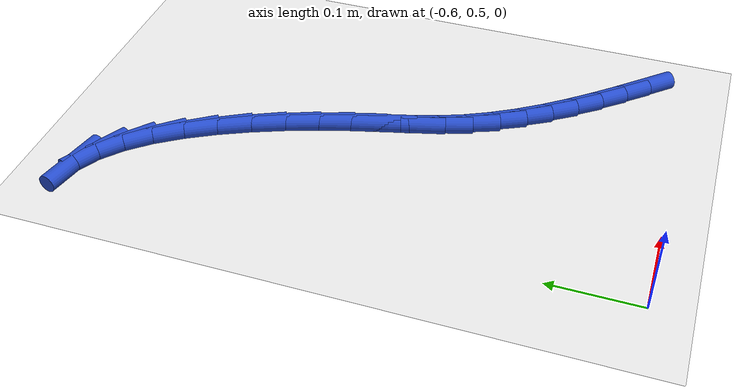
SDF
<sdf version="1.6">
 <world name="default">
  <model name="ground_plane">
   <static>1</static>
   <link name="link">
    <collision name="collision">
     <geometry><plane><normal>0 0 1</normal><size>100 100</size></plane></geometry>
     <surface><friction><ode><mu>100</mu><mu2>50</mu2></ode></friction></surface>
    </collision>
    <visual name="visual">
     <cast_shadows>0</cast_shadows>
     <geometry><plane><normal>0 0 1</normal><size>100 100</size></plane></geometry>
     <material>
      <script><uri>file://media/materials/scripts/gazebo.material</uri><name>Gazebo/WhiteGlow</name></script>
     </material>
    </visual>
   </link>
  </model>
  <model name="line">
   <link name="link_20">
    <pose>-0.2699152918491588 0.5545902211323395 0.01 0 1.57 -0.8303610668236875</pose>
    <collision name="collision">
     <geometry><cylinder><radius>0.01</radius><length>0.08</length></cylinder></geometry>
    </collision>
    <visual name="visual">
     <material>
      <script><name>Gazebo/Blue</name><uri>file://media/materials/scripts/gazebo.material</uri></script>
     </material>
     <geometry><cylinder><radius>0.01</radius><length>0.08</length></cylinder></geometry>
    </visual>
   </link>
   <link name="link_21">
    <pose>-0.2919245126644769 0.5786732825040772 0.01 0 1.57 -0.8546041882099095</pose>
    <collision name="collision">
     <geometry><cylinder><radius>0.01</radius><length>0.08</length></cylinder></geometry>
    </collision>
    <visual name="visual">
     <material>
      <script><name>Gazebo/Blue</name><uri>file://media/materials/scripts/gazebo.material</uri></script>
     </material>
     <geometry><cylinder><radius>0.01</radius><length>0.08</length></cylinder></geometry>
    </visual>
   </link>
   <link name="link_22">
    <pose>-0.31311931018923544 0.6030252312563621 0.01 0 1.57 -0.8872730525588548</pose>
    <collision name="collision">
     <geometry><cylinder><radius>0.01</radius><length>0.08</length></cylinder></geometry>
    </collision>
    <visual name="visual">
     <material>
      <script><name>Gazebo/Blue</name><uri>file://media/materials/scripts/gazebo.material</uri></script>
     </material>
     <geometry><cylinder><radius>0.01</radius><length>0.08</length></cylinder></geometry>
    </visual>
   </link>
   <link name="link_23">
    <pose>-0.3332520290535294 0.6277429570002668 0.01 0 1.57 -0.9288807938306439</pose>
    <collision name="collision">
     <geometry><cylinder><radius>0.01</radius><length>0.08</length></cylinder></geometry>
    </collision>
    <visual name="visual">
     <material>
      <script><name>Gazebo/Blue</name><uri>file://media/materials/scripts/gazebo.material</uri></script>
     </material>
     <geometry><cylinder><radius>0.01</radius><length>0.08</length></cylinder></geometry>
    </visual>
   </link>
   <link name="link_24">
    <pose>-0.3520750138874532 0.6529233493468637 0.01 0 1.57 -0.9799580597882548</pose>
    <collision name="collision">
     <geometry><cylinder><radius>0.01</radius><length>0.08</length></cylinder></geometry>
    </collision>
    <visual name="visual">
     <material>
      <script><name>Gazebo/Blue</name><uri>file://media/materials/scripts/gazebo.material</uri></script>
     </material>
     <geometry><cylinder><radius>0.01</radius><length>0.08</length></cylinder></geometry>
    </visual>
   </link>
   <link name="link_25">
    <pose>-0.36934060932110147 0.6786632979072252 0.01 0 1.57 -1.0409527470167534</pose>
    <collision name="collision">
     <geometry><cylinder><radius>0.01</radius><length>0.08</length></cylinder></geometry>
    </collision>
    <visual name="visual">
     <material>
      <script><name>Gazebo/Blue</name><uri>file://media/materials/scripts/gazebo.material</uri></script>
     </material>
     <geometry><cylinder><radius>0.01</radius><length>0.08</length></cylinder></geometry>
    </visual>
   </link>
   <link name="link_26">
    <pose>-0.3848011599845688 0.705059692292424 0.01 0 1.57 -1.1120821003731851</pose>
    <collision name="collision">
     <geometry><cylinder><radius>0.01</radius><length>0.08</length></cylinder></geometry>
    </collision>
    <visual name="visual">
     <material>
      <script><name>Gazebo/Blue</name><uri>file://media/materials/scripts/gazebo.material</uri></script>
     </material>
     <geometry><cylinder><radius>0.01</radius><length>0.08</length></cylinder></geometry>
    </visual>
   </link>
   <link name="link_27">
    <pose>-0.3982090105079501 0.7322094221135328 0.01 0 1.57 -1.1930303214714388</pose>
    <collision name="collision">
     <geometry><cylinder><radius>0.01</radius><length>0.08</length></cylinder></geometry>
    </collision>
    <visual name="visual">
     <material>
      <script><name>Gazebo/Blue</name><uri>file://media/materials/scripts/gazebo.material</uri></script>
     </material>
     <geometry><cylinder><radius>0.01</radius><length>0.08</length></cylinder></geometry>
    </visual>
   </link>
   <link name="link_28">
    <pose>-0.4093203415947308 0.7602100297532666 0.01 0 1.57 -1.2680264631497355</pose>
    <collision name="collision">
     <geometry><cylinder><radius>0.01</radius><length>0.08</length></cylinder></geometry>
    </collision>
    <visual name="visual">
     <material>
      <script><name>Gazebo/Blue</name><uri>file://media/materials/scripts/gazebo.material</uri></script>
     </material>
     <geometry><cylinder><radius>0.01</radius><length>0.08</length></cylinder></geometry>
    </visual>
   </link>
   <link name="link_29">
    <pose>-0.4183897522445403 0.7892438717511238 0.01 0 1.57 -1.3053573788301964</pose>
    <collision name="collision">
     <geometry><cylinder><radius>0.01</radius><length>0.08</length></cylinder></geometry>
    </collision>
    <visual name="visual">
     <material>
      <script><name>Gazebo/Blue</name><uri>file://media/materials/scripts/gazebo.material</uri></script>
     </material>
     <geometry><cylinder><radius>0.01</radius><length>0.08</length></cylinder></geometry>
    </visual>
   </link>
   <link name="link_30">
    <pose>-0.42665883700440327 0.8196612583428206 0.01 0 1.57 -1.3030247935200012</pose>
    <collision name="collision">
     <geometry><cylinder><radius>0.01</radius><length>0.08</length></cylinder></geometry>
    </collision>
    <visual name="visual">
     <material>
      <script><name>Gazebo/Blue</name><uri>file://media/materials/scripts/gazebo.material</uri></script>
     </material>
     <geometry><cylinder><radius>0.01</radius><length>0.08</length></cylinder></geometry>
    </visual>
   </link>
   <link name="link_31">
    <pose>-0.435485286380873 0.8518322554210984 0.01 0 1.57 -1.2708169113477539</pose>
    <collision name="collision">
     <geometry><cylinder><radius>0.01</radius><length>0.08</length></cylinder></geometry>
    </collision>
    <visual name="visual">
     <material>
      <script><name>Gazebo/Blue</name><uri>file://media/materials/scripts/gazebo.material</uri></script>
     </material>
     <geometry><cylinder><radius>0.01</radius><length>0.08</length></cylinder></geometry>
    </visual>
   </link>
   <link name="link_32">
    <pose>-0.44603187365033814 0.8859289909467123 0.01 0 1.57 -1.2302124233695544</pose>
    <collision name="collision">
     <geometry><cylinder><radius>0.01</radius><length>0.08</length></cylinder></geometry>
    </collision>
    <visual name="visual">
     <material>
      <script><name>Gazebo/Blue</name><uri>file://media/materials/scripts/gazebo.material</uri></script>
     </material>
     <geometry><cylinder><radius>0.01</radius><length>0.08</length></cylinder></geometry>
    </visual>
   </link>
   <link name="link_33">
    <pose>-0.45852036859303313 0.9211680063175332 0.01 0 1.57 -1.1843315811143795</pose>
    <collision name="collision">
     <geometry><cylinder><radius>0.01</radius><length>0.08</length></cylinder></geometry>
    </collision>
    <visual name="visual">
     <material>
      <script><name>Gazebo/Blue</name><uri>file://media/materials/scripts/gazebo.material</uri></script>
     </material>
     <geometry><cylinder><radius>0.01</radius><length>0.08</length></cylinder></geometry>
    </visual>
   </link>
   <link name="link_34">
    <pose>-0.47288894350812166 0.9564778504390685 0.01 0 1.57 -1.1299691437176658</pose>
    <collision name="collision">
     <geometry><cylinder><radius>0.01</radius><length>0.08</length></cylinder></geometry>
    </collision>
    <visual name="visual">
     <material>
      <script><name>Gazebo/Blue</name><uri>file://media/materials/scripts/gazebo.material</uri></script>
     </material>
     <geometry><cylinder><radius>0.01</radius><length>0.08</length></cylinder></geometry>
    </visual>
   </link>
   <link name="link_35">
    <pose>-0.4890757127902467 0.9907870134149392 0.01 0 1.57 -1.0629005494111992</pose>
    <collision name="collision">
     <geometry><cylinder><radius>0.01</radius><length>0.08</length></cylinder></geometry>
    </collision>
    <visual name="visual">
     <material>
      <script><name>Gazebo/Blue</name><uri>file://media/materials/scripts/gazebo.material</uri></script>
     </material>
     <geometry><cylinder><radius>0.01</radius><length>0.08</length></cylinder></geometry>
    </visual>
   </link>
   <link name="link_36">
    <pose>-0.5070187908340514 1.0230239853487653 0.01 0 1.57 -0.9770574449020017</pose>
    <collision name="collision">
     <geometry><cylinder><radius>0.01</radius><length>0.08</length></cylinder></geometry>
    </collision>
    <visual name="visual">
     <material>
      <script><name>Gazebo/Blue</name><uri>file://media/materials/scripts/gazebo.material</uri></script>
     </material>
     <geometry><cylinder><radius>0.01</radius><length>0.08</length></cylinder></geometry>
    </visual>
   </link>
   <link name="link_37">
    <pose>-0.5266562920341785 1.052117256344167 0.01 0 1.57 -0.8634229747746909</pose>
    <collision name="collision">
     <geometry><cylinder><radius>0.01</radius><length>0.08</length></cylinder></geometry>
    </collision>
    <visual name="visual">
     <material>
      <script><name>Gazebo/Blue</name><uri>file://media/materials/scripts/gazebo.material</uri></script>
     </material>
     <geometry><cylinder><radius>0.01</radius><length>0.08</length></cylinder></geometry>
    </visual>
   </link>
   <link name="link_38">
    <pose>-0.5479263307852714 1.0769953165047652 0.01 0 1.57 -0.7089695329008289</pose>
    <collision name="collision">
     <geometry><cylinder><radius>0.01</radius><length>0.08</length></cylinder></geometry>
    </collision>
    <visual name="visual">
     <material>
      <script><name>Gazebo/Blue</name><uri>file://media/materials/scripts/gazebo.material</uri></script>
     </material>
     <geometry><cylinder><radius>0.01</radius><length>0.08</length></cylinder></geometry>
    </visual>
   </link>
   <link name="link_39">
    <pose>-0.570767021481973 1.0965866559341801 0.01 0 1.57 -0.49781308248723494</pose>
    <collision name="collision">
     <geometry><cylinder><radius>0.01</radius><length>0.08</length></cylinder></geometry>
    </collision>
    <visual name="visual">
     <material>
      <script><name>Gazebo/Blue</name><uri>file://media/materials/scripts/gazebo.material</uri></script>
     </material>
     <geometry><cylinder><radius>0.01</radius><length>0.08</length></cylinder></geometry>
    </visual>
   </link>
   <link name="link_40">
    <pose>-0.5951164785189262 1.1098197647360317 0.01 0 1.57 -0.22128463945847898</pose>
    <collision name="collision">
     <geometry><cylinder><radius>0.01</radius><length>0.08</length></cylinder></geometry>
    </collision>
    <visual name="visual">
     <material>
      <script><name>Gazebo/Blue</name><uri>file://media/materials/scripts/gazebo.material</uri></script>
     </material>
     <geometry><cylinder><radius>0.01</radius><length>0.08</length></cylinder></geometry>
    </visual>
   </link>
  </model>
 </world>
</sdf>
